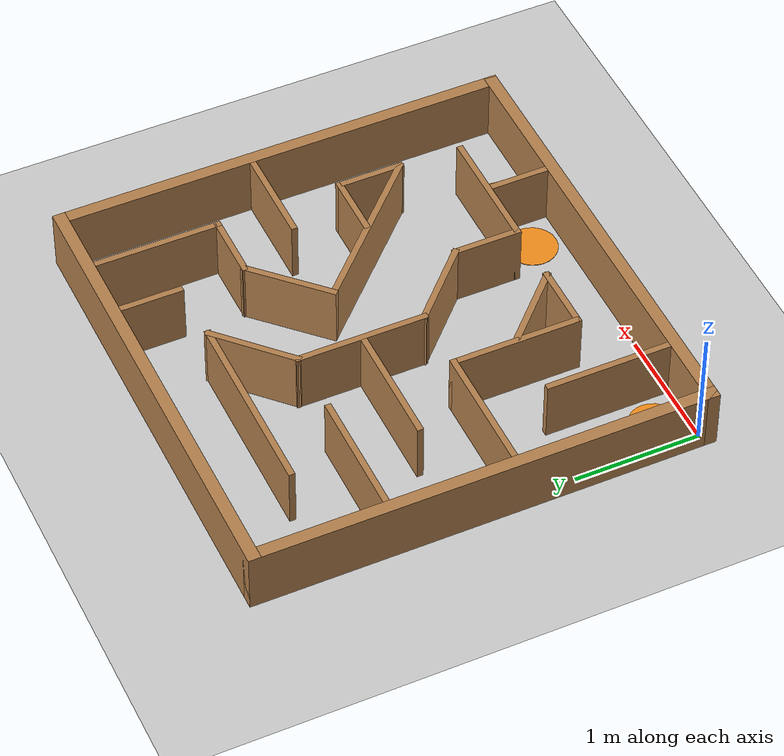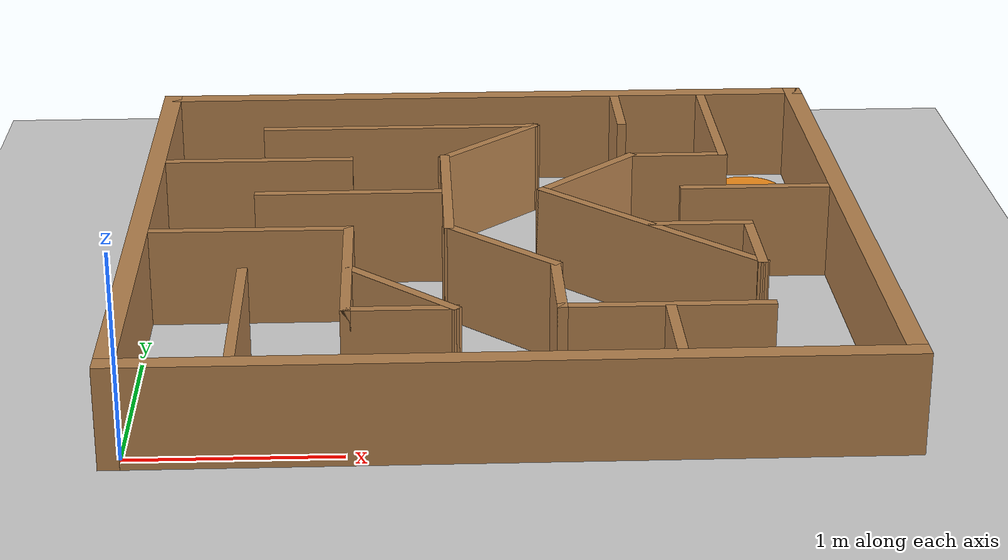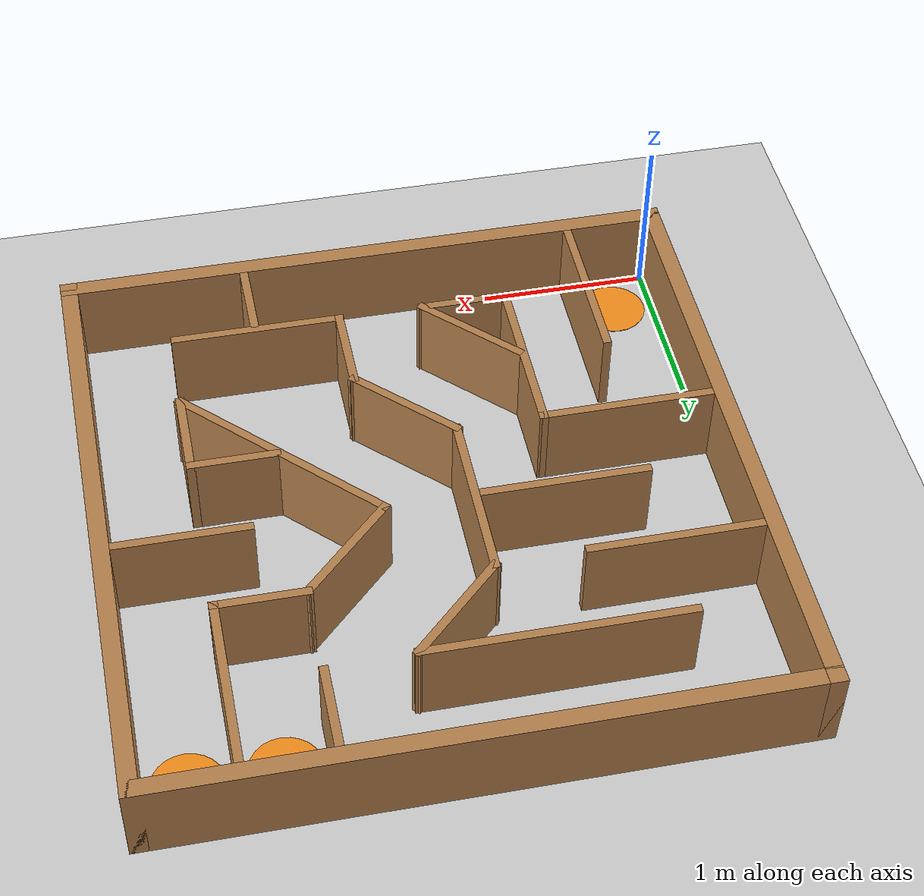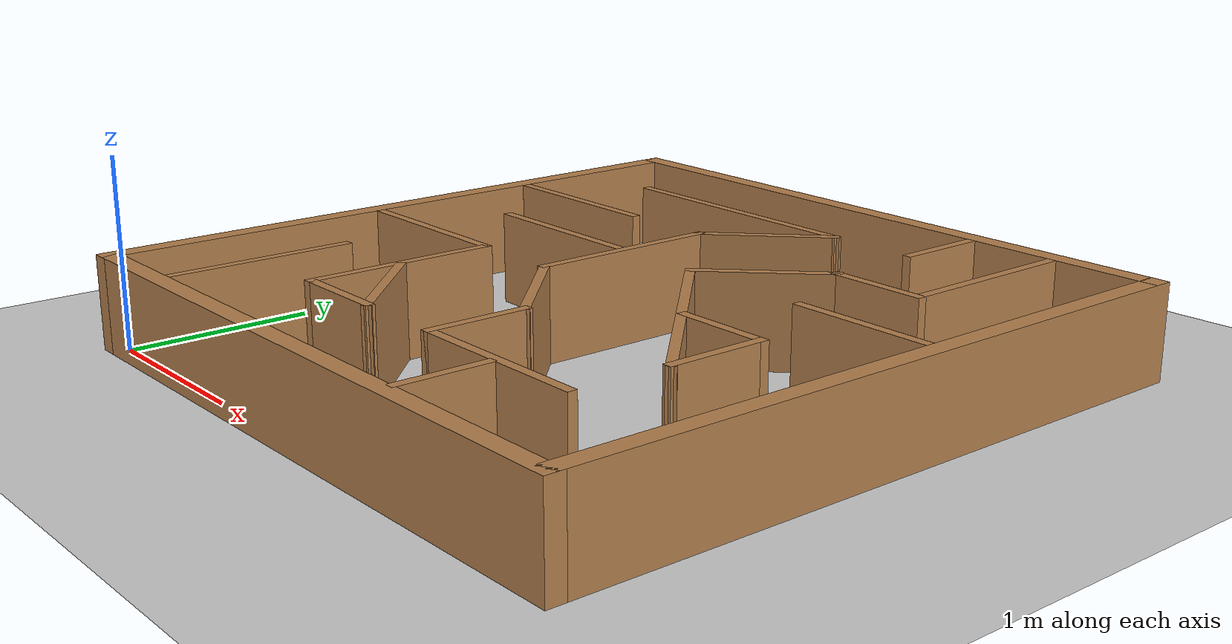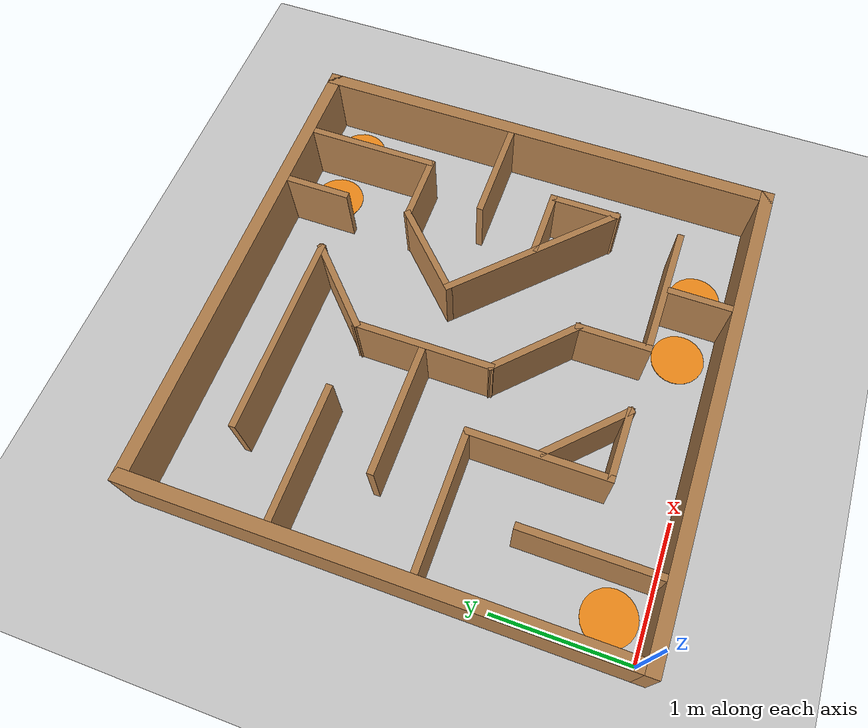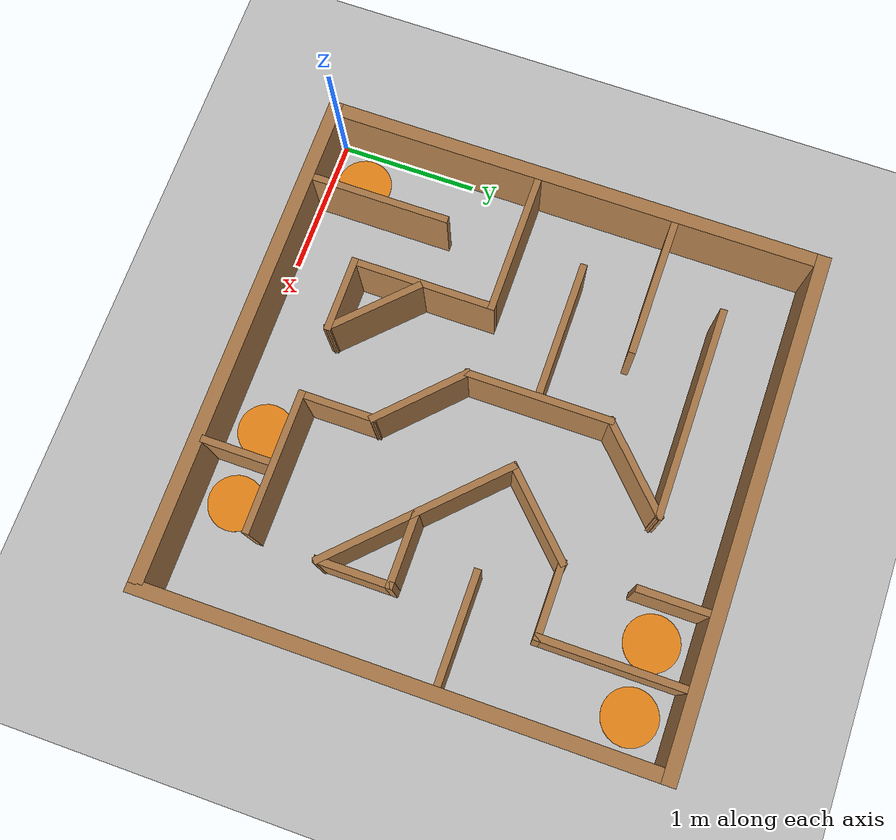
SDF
<sdf version="1.7">
 <world name="default">
  <light name="sun" type="directional">
   <pose>0 0 10 0 -0 0</pose>
   <diffuse>0.8 0.8 0.8 1</diffuse>
   <specular>0.2 0.2 0.2 1</specular>
   <attenuation>
    <range>1000</range>
    <constant>0.9</constant>
    <linear>0.01</linear>
    <quadratic>0.001</quadratic>
   </attenuation>
   <direction>-0.5 0.1 -0.9</direction>
   <spot><inner_angle>0</inner_angle><outer_angle>0</outer_angle><falloff>0</falloff></spot>
  </light>
  <model name="ground_plane">
   <static>1</static>
   <link name="link">
    <collision name="collision">
     <geometry><plane><normal>0 0 1</normal><size>100 100</size></plane></geometry>
     <surface>
      <contact><collide_bitmask>65535</collide_bitmask></contact>
      <friction><ode><mu>100</mu><mu2>50</mu2></ode></friction>
     </surface>
    </collision>
    <visual name="visual">
     <cast_shadows>0</cast_shadows>
     <geometry><plane><normal>0 0 1</normal><size>100 100</size></plane></geometry>
     <material>
      <script><uri>file://media/materials/scripts/gazebo.material</uri><name>Gazebo/Grey</name></script>
     </material>
    </visual>
   </link>
  </model>
  <gravity>0 0 -9.8</gravity>
  <magnetic_field>6e-06 2.3e-05 -4.2e-05</magnetic_field>
  <atmosphere type="adiabatic"/>
  <physics type="ode">
   <max_step_size>0.001</max_step_size>
   <real_time_factor>1</real_time_factor>
   <real_time_update_rate>1000</real_time_update_rate>
  </physics>
  <scene><ambient>0.4 0.4 0.4 1</ambient><background>0.7 0.7 0.7 1</background><shadows>1</shadows></scene>
  <spherical_coordinates>
   <surface_model>EARTH_WGS84</surface_model>
   <latitude_deg>0</latitude_deg>
   <longitude_deg>0</longitude_deg>
   <elevation>0</elevation>
   <heading_deg>0</heading_deg>
  </spherical_coordinates>
  <model name="maze">
   <pose>1.75 1.75 0 0 -0 0</pose>
   <link name="Wall_10">
    <collision name="Wall_10_Collision">
     <geometry><box><size>1.02 0.05 0.5</size></box></geometry>
     <pose>0 0 0.25 0 -0 0</pose>
    </collision>
    <visual name="Wall_10_Visual">
     <pose>0 0 0.25 0 -0 0</pose>
     <geometry><box><size>1.02 0.05 0.5</size></box></geometry>
     <material>
      <script><uri>file://materials/scripts/seamless_wood.material</uri><name>Team08/SeamlessWood</name></script>
      <ambient>1 1 1 1</ambient>
     </material>
     <meta><layer>0</layer></meta>
    </visual>
    <pose>1.25 1.235 0 0 -0 -1.5708</pose>
   </link>
   <link name="Wall_12">
    <collision name="Wall_12_Collision">
     <geometry><box><size>0.5 0.05 0.5</size></box></geometry>
     <pose>0 0 0.25 0 -0 0</pose>
    </collision>
    <visual name="Wall_12_Visual">
     <pose>0 0 0.25 0 -0 0</pose>
     <geometry><box><size>0.5 0.05 0.5</size></box></geometry>
     <material>
      <script><uri>file://materials/scripts/seamless_wood.material</uri><name>Team08/SeamlessWood</name></script>
      <ambient>1 1 1 1</ambient>
     </material>
     <meta><layer>0</layer></meta>
    </visual>
    <pose>0.75 1.495 0 0 -0 -1.5708</pose>
   </link>
   <link name="Wall_16">
    <collision name="Wall_16_Collision">
     <geometry><box><size>0.55 0.05 0.5</size></box></geometry>
     <pose>0 0 0.25 0 -0 0</pose>
    </collision>
    <visual name="Wall_16_Visual">
     <pose>0 0 0.25 0 -0 0</pose>
     <geometry><box><size>0.55 0.05 0.5</size></box></geometry>
     <material>
      <script><uri>file://materials/scripts/seamless_wood.material</uri><name>Team08/SeamlessWood</name></script>
      <ambient>1 1 1 1</ambient>
     </material>
     <meta><layer>0</layer></meta>
    </visual>
    <pose>1 0.75 0 0 -0 3.14159</pose>
   </link>
   <link name="Wall_18">
    <collision name="Wall_18_Collision">
     <geometry><box><size>0.757107 0.05 0.5</size></box></geometry>
     <pose>0 0 0.25 0 -0 0</pose>
    </collision>
    <visual name="Wall_18_Visual">
     <pose>0 0 0.25 0 -0 0</pose>
     <geometry><box><size>0.757107 0.05 0.5</size></box></geometry>
     <material>
      <script><uri>file://materials/scripts/seamless_wood.material</uri><name>Team08/SeamlessWood</name></script>
      <ambient>1 1 1 1</ambient>
     </material>
     <meta><layer>0</layer></meta>
    </visual>
    <pose>0.5 0.5 0 0 -0 -2.35619</pose>
   </link>
   <link name="Wall_2">
    <collision name="Wall_2_Collision">
     <geometry><box><size>3.69 0.1 0.5</size></box></geometry>
     <pose>0 0 0.25 0 -0 0</pose>
    </collision>
    <visual name="Wall_2_Visual">
     <pose>0 0 0.25 0 -0 0</pose>
     <geometry><box><size>3.69 0.1 0.5</size></box></geometry>
     <material>
      <script><uri>file://materials/scripts/seamless_wood.material</uri><name>Team08/SeamlessWood</name></script>
      <ambient>0.509804 0.478431 0.490196 1</ambient>
     </material>
     <meta><layer>0</layer></meta>
    </visual>
    <pose>0 1.795 0 0 -0 0</pose>
   </link>
   <link name="Wall_20">
    <collision name="Wall_20_Collision">
     <geometry><box><size>1.46421 0.05 0.5</size></box></geometry>
     <pose>0 0 0.25 0 -0 0</pose>
    </collision>
    <visual name="Wall_20_Visual">
     <pose>0 0 0.25 0 -0 0</pose>
     <geometry><box><size>1.46421 0.05 0.5</size></box></geometry>
     <material>
      <script><uri>file://materials/scripts/seamless_wood.material</uri><name>Team08/SeamlessWood</name></script>
      <ambient>1 1 1 1</ambient>
     </material>
     <meta><layer>0</layer></meta>
    </visual>
    <pose>0.75 -0.25 0 0 -0 -0.785398</pose>
   </link>
   <link name="Wall_22">
    <collision name="Wall_22_Collision">
     <geometry><box><size>0.55 0.05 0.5</size></box></geometry>
     <pose>0 0 0.25 0 -0 0</pose>
    </collision>
    <visual name="Wall_22_Visual">
     <pose>0 0 0.25 0 -0 0</pose>
     <geometry><box><size>0.55 0.05 0.5</size></box></geometry>
     <material>
      <script><uri>file://materials/scripts/seamless_wood.material</uri><name>Team08/SeamlessWood</name></script>
      <ambient>1 1 1 1</ambient>
     </material>
     <meta><layer>0</layer></meta>
    </visual>
    <pose>1.25 -0.5 0 0 -0 1.5708</pose>
   </link>
   <link name="Wall_24">
    <collision name="Wall_24_Collision">
     <geometry><box><size>0.53 0.05 0.5</size></box></geometry>
     <pose>0 0 0.25 0 -0 0</pose>
    </collision>
    <visual name="Wall_24_Visual">
     <pose>0 0 0.25 0 -0 0</pose>
     <geometry><box><size>0.53 0.05 0.5</size></box></geometry>
     <material>
      <script><uri>file://materials/scripts/seamless_wood.material</uri><name>Team08/SeamlessWood</name></script>
      <ambient>1 1 1 1</ambient>
     </material>
     <meta><layer>0</layer></meta>
    </visual>
    <pose>1.01 -0.25 0 0 -0 3.14159</pose>
   </link>
   <link name="Wall_26">
    <collision name="Wall_26_Collision">
     <geometry><box><size>0.78 0.05 0.5</size></box></geometry>
     <pose>0 0 0.25 0 -0 0</pose>
    </collision>
    <visual name="Wall_26_Visual">
     <pose>0 0 0.25 0 -0 0</pose>
     <geometry><box><size>0.78 0.05 0.5</size></box></geometry>
     <material>
      <script><uri>file://materials/scripts/seamless_wood.material</uri><name>Team08/SeamlessWood</name></script>
      <ambient>1 1 1 1</ambient>
     </material>
     <meta><layer>0</layer></meta>
    </visual>
    <pose>1.355 0.25 0 0 -0 3.14159</pose>
   </link>
   <link name="Wall_28">
    <collision name="Wall_28_Collision">
     <geometry><box><size>0.5 0.05 0.5</size></box></geometry>
     <pose>0 0 0.25 0 -0 0</pose>
    </collision>
    <visual name="Wall_28_Visual">
     <pose>0 0 0.25 0 -0 0</pose>
     <geometry><box><size>0.5 0.05 0.5</size></box></geometry>
     <material>
      <script><uri>file://materials/scripts/seamless_wood.material</uri><name>Team08/SeamlessWood</name></script>
      <ambient>1 1 1 1</ambient>
     </material>
     <meta><layer>0</layer></meta>
    </visual>
    <pose>0.75 -1.515 0 0 -0 1.5708</pose>
   </link>
   <link name="Wall_30">
    <collision name="Wall_30_Collision">
     <geometry><box><size>1 0.05 0.5</size></box></geometry>
     <pose>0 0 0.25 0 -0 0</pose>
    </collision>
    <visual name="Wall_30_Visual">
     <pose>0 0 0.25 0 -0 0</pose>
     <geometry><box><size>1 0.05 0.5</size></box></geometry>
     <material>
      <script><uri>file://materials/scripts/seamless_wood.material</uri><name>Team08/SeamlessWood</name></script>
      <ambient>1 1 1 1</ambient>
     </material>
     <meta><layer>0</layer></meta>
    </visual>
    <pose>-1.25 -1.245 0 0 -0 1.5708</pose>
   </link>
   <link name="Wall_32">
    <collision name="Wall_32_Collision">
     <geometry><box><size>1 0.05 0.5</size></box></geometry>
     <pose>0 0 0.25 0 -0 0</pose>
    </collision>
    <visual name="Wall_32_Visual">
     <pose>0 0 0.25 0 -0 0</pose>
     <geometry><box><size>1 0.05 0.5</size></box></geometry>
     <material>
      <script><uri>file://materials/scripts/seamless_wood.material</uri><name>Team08/SeamlessWood</name></script>
      <ambient>1 1 1 1</ambient>
     </material>
     <meta><layer>0</layer></meta>
    </visual>
    <pose>-1.245 0.75 0 0 -0 0</pose>
   </link>
   <link name="Wall_34">
    <collision name="Wall_34_Collision">
     <geometry><box><size>1.02 0.05 0.5</size></box></geometry>
     <pose>0 0 0.25 0 -0 0</pose>
    </collision>
    <visual name="Wall_34_Visual">
     <pose>0 0 0.25 0 -0 0</pose>
     <geometry><box><size>1.02 0.05 0.5</size></box></geometry>
     <material>
      <script><uri>file://materials/scripts/seamless_wood.material</uri><name>Team08/SeamlessWood</name></script>
      <ambient>1 1 1 1</ambient>
     </material>
     <meta><layer>0</layer></meta>
    </visual>
    <pose>-1.235 -0.25 0 0 -0 0</pose>
   </link>
   <link name="Wall_36">
    <collision name="Wall_36_Collision">
     <geometry><box><size>1.05 0.05 0.5</size></box></geometry>
     <pose>0 0 0.25 0 -0 0</pose>
    </collision>
    <visual name="Wall_36_Visual">
     <pose>0 0 0.25 0 -0 0</pose>
     <geometry><box><size>1.05 0.05 0.5</size></box></geometry>
     <material>
      <script><uri>file://materials/scripts/seamless_wood.material</uri><name>Team08/SeamlessWood</name></script>
      <ambient>1 1 1 1</ambient>
     </material>
     <meta><layer>0</layer></meta>
    </visual>
    <pose>-0.75 -0.75 0 0 -0 -1.5708</pose>
   </link>
   <link name="Wall_38">
    <collision name="Wall_38_Collision">
     <geometry><box><size>0.55 0.05 0.5</size></box></geometry>
     <pose>0 0 0.25 0 -0 0</pose>
    </collision>
    <visual name="Wall_38_Visual">
     <pose>0 0 0.25 0 -0 0</pose>
     <geometry><box><size>0.55 0.05 0.5</size></box></geometry>
     <material>
      <script><uri>file://materials/scripts/seamless_wood.material</uri><name>Team08/SeamlessWood</name></script>
      <ambient>1 1 1 1</ambient>
     </material>
     <meta><layer>0</layer></meta>
    </visual>
    <pose>-0.5 -1.25 0 0 -0 0</pose>
   </link>
   <link name="Wall_4">
    <collision name="Wall_4_Collision">
     <geometry><box><size>3.69 0.1 0.5</size></box></geometry>
     <pose>0 0 0.25 0 -0 0</pose>
    </collision>
    <visual name="Wall_4_Visual">
     <pose>0 0 0.25 0 -0 0</pose>
     <geometry><box><size>3.69 0.1 0.5</size></box></geometry>
     <material>
      <script><uri>file://materials/scripts/seamless_wood.material</uri><name>Team08/SeamlessWood</name></script>
      <ambient>0.509804 0.478431 0.490196 1</ambient>
     </material>
     <meta><layer>0</layer></meta>
    </visual>
    <pose>1.795 0 0 0 -0 -1.5708</pose>
   </link>
   <link name="Wall_40">
    <collision name="Wall_40_Collision">
     <geometry><box><size>0.725 0.05 0.5</size></box></geometry>
     <pose>0 0 0.25 0 -0 0</pose>
    </collision>
    <visual name="Wall_40_Visual">
     <pose>0 0 0.25 0 -0 0</pose>
     <geometry><box><size>0.725 0.05 0.5</size></box></geometry>
     <material>
      <script><uri>file://materials/scripts/seamless_wood.material</uri><name>Team08/SeamlessWood</name></script>
      <ambient>1 1 1 1</ambient>
     </material>
     <meta><layer>0</layer></meta>
    </visual>
    <pose>-0.4885 -1.0115 0 0 -0 2.35619</pose>
   </link>
   <link name="Wall_42">
    <collision name="Wall_42_Collision">
     <geometry><box><size>1.525 0.05 0.5</size></box></geometry>
     <pose>0 0 0.25 0 -0 0</pose>
    </collision>
    <visual name="Wall_42_Visual">
     <pose>0 0 0.25 0 -0 0</pose>
     <geometry><box><size>1.525 0.05 0.5</size></box></geometry>
     <material>
      <script><uri>file://materials/scripts/seamless_wood.material</uri><name>Team08/SeamlessWood</name></script>
      <ambient>1 1 1 1</ambient>
     </material>
     <meta><layer>0</layer></meta>
    </visual>
    <pose>-0.4825 1.25 0 0 -0 0</pose>
   </link>
   <link name="Wall_44">
    <collision name="Wall_44_Collision">
     <geometry><box><size>0.753651 0.05 0.5</size></box></geometry>
     <pose>0 0 0.25 0 -0 0</pose>
    </collision>
    <visual name="Wall_44_Visual">
     <pose>0 0 0.25 0 -0 0</pose>
     <geometry><box><size>0.753651 0.05 0.5</size></box></geometry>
     <material>
      <script><uri>file://materials/scripts/seamless_wood.material</uri><name>Team08/SeamlessWood</name></script>
      <ambient>1 1 1 1</ambient>
     </material>
     <meta><layer>0</layer></meta>
    </visual>
    <pose>0.0025 1.005 0 0 -0 -2.37127</pose>
   </link>
   <link name="Wall_46">
    <collision name="Wall_46_Collision">
     <geometry><box><size>1.06 0.05 0.5</size></box></geometry>
     <pose>0 0 0.25 0 -0 0</pose>
    </collision>
    <visual name="Wall_46_Visual">
     <pose>0 0 0.25 0 -0 0</pose>
     <geometry><box><size>1.06 0.05 0.5</size></box></geometry>
     <material>
      <script><uri>file://materials/scripts/seamless_wood.material</uri><name>Team08/SeamlessWood</name></script>
      <ambient>1 1 1 1</ambient>
     </material>
     <meta><layer>0</layer></meta>
    </visual>
    <pose>-0.25 0.255 0 0 -0 -1.5708</pose>
   </link>
   <link name="Wall_48">
    <collision name="Wall_48_Collision">
     <geometry><box><size>0.970001 0.05 0.5</size></box></geometry>
     <pose>0 0 0.25 0 -0 0</pose>
    </collision>
    <visual name="Wall_48_Visual">
     <pose>0 0 0.25 0 -0 0</pose>
     <geometry><box><size>0.970001 0.05 0.5</size></box></geometry>
     <material>
      <script><uri>file://materials/scripts/seamless_wood.material</uri><name>Team08/SeamlessWood</name></script>
      <ambient>1 1 1 1</ambient>
     </material>
     <meta><layer>0</layer></meta>
    </visual>
    <pose>-0.76 0.249 0 0 -0 3.14159</pose>
   </link>
   <link name="Wall_50">
    <collision name="Wall_50_Collision">
     <geometry><box><size>0.750071 0.05 0.5</size></box></geometry>
     <pose>0 0 0.25 0 -0 0</pose>
    </collision>
    <visual name="Wall_50_Visual">
     <pose>0 0 0.25 0 -0 0</pose>
     <geometry><box><size>0.750071 0.05 0.5</size></box></geometry>
     <material>
      <script><uri>file://materials/scripts/seamless_wood.material</uri><name>Team08/SeamlessWood</name></script>
      <ambient>1 1 1 1</ambient>
     </material>
     <meta><layer>0</layer></meta>
    </visual>
    <pose>0 -0.495 0 0 -0 -0.775298</pose>
   </link>
   <link name="Wall_52">
    <collision name="Wall_52_Collision">
     <geometry><box><size>0.56 0.05 0.5</size></box></geometry>
     <pose>0 0 0.25 0 -0 0</pose>
    </collision>
    <visual name="Wall_52_Visual">
     <pose>0 0 0.25 0 -0 0</pose>
     <geometry><box><size>0.56 0.05 0.5</size></box></geometry>
     <material>
      <script><uri>file://materials/scripts/seamless_wood.material</uri><name>Team08/SeamlessWood</name></script>
      <ambient>1 1 1 1</ambient>
     </material>
     <meta><layer>0</layer></meta>
    </visual>
    <pose>0.25 -0.995 0 0 -0 -1.5708</pose>
   </link>
   <link name="Wall_54">
    <collision name="Wall_54_Collision">
     <geometry><box><size>1.02 0.05 0.5</size></box></geometry>
     <pose>0 0 0.25 0 -0 0</pose>
    </collision>
    <visual name="Wall_54_Visual">
     <pose>0 0 0.25 0 -0 0</pose>
     <geometry><box><size>1.02 0.05 0.5</size></box></geometry>
     <material>
      <script><uri>file://materials/scripts/seamless_wood.material</uri><name>Team08/SeamlessWood</name></script>
      <ambient>1 1 1 1</ambient>
     </material>
     <meta><layer>0</layer></meta>
    </visual>
    <pose>0.735 -1.25 0 0 -0 0</pose>
   </link>
   <link name="Wall_6">
    <collision name="Wall_6_Collision">
     <geometry><box><size>3.69 0.1 0.5</size></box></geometry>
     <pose>0 0 0.25 0 -0 0</pose>
    </collision>
    <visual name="Wall_6_Visual">
     <pose>0 0 0.25 0 -0 0</pose>
     <geometry><box><size>3.69 0.1 0.5</size></box></geometry>
     <material>
      <script><uri>file://materials/scripts/seamless_wood.material</uri><name>Team08/SeamlessWood</name></script>
      <ambient>0.509804 0.478431 0.490196 1</ambient>
     </material>
     <meta><layer>0</layer></meta>
    </visual>
    <pose>0 -1.795 0 0 -0 3.14159</pose>
   </link>
   <link name="Wall_8">
    <collision name="Wall_8_Collision">
     <geometry><box><size>3.69 0.1 0.5</size></box></geometry>
     <pose>0 0 0.25 0 -0 0</pose>
    </collision>
    <visual name="Wall_8_Visual">
     <pose>0 0 0.25 0 -0 0</pose>
     <geometry><box><size>3.69 0.1 0.5</size></box></geometry>
     <material>
      <script><uri>file://materials/scripts/seamless_wood.material</uri><name>Team08/SeamlessWood</name></script>
      <ambient>0.509804 0.478431 0.490196 1</ambient>
     </material>
     <meta><layer>0</layer></meta>
    </visual>
    <pose>-1.795 0 0 0 -0 1.5708</pose>
   </link>
   <static>1</static>
  </model>
  <model name="Zones">
   <link name="link_0">
    <inertial>
     <mass>1</mass>
     <inertia><ixx>0.145833</ixx><ixy>0</ixy><ixz>0</ixz><iyy>0.145833</iyy><iyz>0</iyz><izz>0.125</izz></inertia>
    </inertial>
    <pose>-0.01853 -1.20086 -0 0 -0 0</pose>
    <visual name="visual">
     <geometry><cylinder><radius>0.2</radius><length>0.005</length></cylinder></geometry>
     <material>
      <lighting>1</lighting>
      <script><uri>file://media/materials/scripts/gazebo.material</uri><name>Gazebo/Orange</name></script>
      <shader type="pixel"><normal_map>__default__</normal_map></shader>
      <ambient>0.255 0.14 0 1</ambient>
      <diffuse>0.255 0.14 0 1</diffuse>
      <specular>0.255 0.14 0 1</specular>
      <emissive>0.255 0.14 0 1</emissive>
     </material>
    </visual>
    <collision name="collision">
     <geometry><cylinder><radius>0.2</radius><length>0.005</length></cylinder></geometry>
     <surface>
      <friction>
       <ode><mu>1</mu><mu2>1</mu2><fdir1>0 0 0</fdir1><slip1>0</slip1><slip2>0</slip2></ode>
       <torsional>
        <coefficient>1</coefficient>
        <patch_radius>0</patch_radius>
        <surface_radius>0</surface_radius>
        <use_patch_radius>1</use_patch_radius>
        <ode><slip>0</slip></ode>
       </torsional>
      </friction>
      <bounce><restitution_coefficient>0</restitution_coefficient><threshold>1e+06</threshold></bounce>
      <contact>
       <collide_without_contact>0</collide_without_contact>
       <collide_without_contact_bitmask>1</collide_without_contact_bitmask>
       <collide_bitmask>1</collide_bitmask>
       <ode>
        <soft_cfm>0</soft_cfm>
        <soft_erp>0.2</soft_erp>
        <kp>1e+13</kp>
        <kd>1</kd>
        <max_vel>0.01</max_vel>
        <min_depth>0</min_depth>
       </ode>
       <bullet>
        <split_impulse>1</split_impulse>
        <split_impulse_penetration_threshold>-0.01</split_impulse_penetration_threshold>
        <soft_cfm>0</soft_cfm>
        <soft_erp>0.2</soft_erp>
        <kp>1e+13</kp>
        <kd>1</kd>
       </bullet>
      </contact>
     </surface>
    </collision>
   </link>
   <link name="link_0_clone">
    <inertial>
     <mass>1</mass>
     <inertia><ixx>0.145833</ixx><ixy>0</ixy><ixz>0</ixz><iyy>0.145833</iyy><iyz>0</iyz><izz>0.125</izz></inertia>
    </inertial>
    <pose>0.525973 -1.20497 0 0 -0 0</pose>
    <visual name="visual">
     <geometry><cylinder><radius>0.2</radius><length>0.005</length></cylinder></geometry>
     <material>
      <lighting>1</lighting>
      <script><uri>file://media/materials/scripts/gazebo.material</uri><name>Gazebo/Orange</name></script>
      <shader type="pixel"><normal_map>__default__</normal_map></shader>
      <ambient>0.255 0.14 0 1</ambient>
      <diffuse>0.255 0.14 0 1</diffuse>
      <specular>0.255 0.14 0 1</specular>
      <emissive>0.255 0.14 0 1</emissive>
     </material>
    </visual>
    <collision name="collision">
     <geometry><cylinder><radius>0.2</radius><length>0.005</length></cylinder></geometry>
     <surface>
      <friction>
       <ode><mu>1</mu><mu2>1</mu2><fdir1>0 0 0</fdir1><slip1>0</slip1><slip2>0</slip2></ode>
       <torsional>
        <coefficient>1</coefficient>
        <patch_radius>0</patch_radius>
        <surface_radius>0</surface_radius>
        <use_patch_radius>1</use_patch_radius>
        <ode><slip>0</slip></ode>
       </torsional>
      </friction>
      <bounce><restitution_coefficient>0</restitution_coefficient><threshold>1e+06</threshold></bounce>
      <contact>
       <collide_without_contact>0</collide_without_contact>
       <collide_without_contact_bitmask>1</collide_without_contact_bitmask>
       <collide_bitmask>1</collide_bitmask>
       <ode>
        <soft_cfm>0</soft_cfm>
        <soft_erp>0.2</soft_erp>
        <kp>1e+13</kp>
        <kd>1</kd>
        <max_vel>0.01</max_vel>
        <min_depth>0</min_depth>
       </ode>
       <bullet>
        <split_impulse>1</split_impulse>
        <split_impulse_penetration_threshold>-0.01</split_impulse_penetration_threshold>
        <soft_cfm>0</soft_cfm>
        <soft_erp>0.2</soft_erp>
        <kp>1e+13</kp>
        <kd>1</kd>
       </bullet>
      </contact>
     </surface>
    </collision>
   </link>
   <link name="link_0_clone_0">
    <inertial>
     <mass>1</mass>
     <inertia><ixx>0.145833</ixx><ixy>0</ixy><ixz>0</ixz><iyy>0.145833</iyy><iyz>0</iyz><izz>0.125</izz></inertia>
    </inertial>
    <pose>0.49862 1.80393 0 0 -0 0</pose>
    <visual name="visual">
     <geometry><cylinder><radius>0.2</radius><length>0.005</length></cylinder></geometry>
     <material>
      <lighting>1</lighting>
      <script><uri>file://media/materials/scripts/gazebo.material</uri><name>Gazebo/Orange</name></script>
      <shader type="pixel"><normal_map>__default__</normal_map></shader>
      <ambient>0.255 0.14 0 1</ambient>
      <diffuse>0.255 0.14 0 1</diffuse>
      <specular>0.255 0.14 0 1</specular>
      <emissive>0.255 0.14 0 1</emissive>
     </material>
    </visual>
    <collision name="collision">
     <geometry><cylinder><radius>0.2</radius><length>0.005</length></cylinder></geometry>
     <surface>
      <friction>
       <ode><mu>1</mu><mu2>1</mu2><fdir1>0 0 0</fdir1><slip1>0</slip1><slip2>0</slip2></ode>
       <torsional>
        <coefficient>1</coefficient>
        <patch_radius>0</patch_radius>
        <surface_radius>0</surface_radius>
        <use_patch_radius>1</use_patch_radius>
        <ode><slip>0</slip></ode>
       </torsional>
      </friction>
      <bounce><restitution_coefficient>0</restitution_coefficient><threshold>1e+06</threshold></bounce>
      <contact>
       <collide_without_contact>0</collide_without_contact>
       <collide_without_contact_bitmask>1</collide_without_contact_bitmask>
       <collide_bitmask>1</collide_bitmask>
       <ode>
        <soft_cfm>0</soft_cfm>
        <soft_erp>0.2</soft_erp>
        <kp>1e+13</kp>
        <kd>1</kd>
        <max_vel>0.01</max_vel>
        <min_depth>0</min_depth>
       </ode>
       <bullet>
        <split_impulse>1</split_impulse>
        <split_impulse_penetration_threshold>-0.01</split_impulse_penetration_threshold>
        <soft_cfm>0</soft_cfm>
        <soft_erp>0.2</soft_erp>
        <kp>1e+13</kp>
        <kd>1</kd>
       </bullet>
      </contact>
     </surface>
    </collision>
   </link>
   <link name="link_0_clone_1">
    <inertial>
     <mass>1</mass>
     <inertia><ixx>0.145833</ixx><ixy>0</ixy><ixz>0</ixz><iyy>0.145833</iyy><iyz>0</iyz><izz>0.125</izz></inertia>
    </inertial>
    <pose>1.00732 1.80838 0 0 -0 0</pose>
    <visual name="visual">
     <geometry><cylinder><radius>0.2</radius><length>0.005</length></cylinder></geometry>
     <material>
      <lighting>1</lighting>
      <script><uri>file://media/materials/scripts/gazebo.material</uri><name>Gazebo/Orange</name></script>
      <shader type="pixel"><normal_map>__default__</normal_map></shader>
      <ambient>0.1 0.149 0.237 1</ambient>
      <diffuse>0.1 0.149 0.237 1</diffuse>
      <specular>0.1 0.149 0.237 1</specular>
      <emissive>0.1 0.149 0.237 1</emissive>
     </material>
    </visual>
    <collision name="collision">
     <geometry><cylinder><radius>0.2</radius><length>0.005</length></cylinder></geometry>
     <surface>
      <friction>
       <ode><mu>1</mu><mu2>1</mu2><fdir1>0 0 0</fdir1><slip1>0</slip1><slip2>0</slip2></ode>
       <torsional>
        <coefficient>1</coefficient>
        <patch_radius>0</patch_radius>
        <surface_radius>0</surface_radius>
        <use_patch_radius>1</use_patch_radius>
        <ode><slip>0</slip></ode>
       </torsional>
      </friction>
      <bounce><restitution_coefficient>0</restitution_coefficient><threshold>1e+06</threshold></bounce>
      <contact>
       <collide_without_contact>0</collide_without_contact>
       <collide_without_contact_bitmask>1</collide_without_contact_bitmask>
       <collide_bitmask>1</collide_bitmask>
       <ode>
        <soft_cfm>0</soft_cfm>
        <soft_erp>0.2</soft_erp>
        <kp>1e+13</kp>
        <kd>1</kd>
        <max_vel>0.01</max_vel>
        <min_depth>0</min_depth>
       </ode>
       <bullet>
        <split_impulse>1</split_impulse>
        <split_impulse_penetration_threshold>-0.01</split_impulse_penetration_threshold>
        <soft_cfm>0</soft_cfm>
        <soft_erp>0.2</soft_erp>
        <kp>1e+13</kp>
        <kd>1</kd>
       </bullet>
      </contact>
     </surface>
    </collision>
   </link>
   <link name="link_0_clone_2">
    <inertial>
     <mass>1</mass>
     <inertia><ixx>0.145833</ixx><ixy>0</ixy><ixz>0</ixz><iyy>0.145833</iyy><iyz>0</iyz><izz>0.125</izz></inertia>
    </inertial>
    <pose>-2.01339 -1.20646 0 0 -0 0</pose>
    <visual name="visual">
     <geometry><cylinder><radius>0.2</radius><length>0.005</length></cylinder></geometry>
     <material>
      <lighting>1</lighting>
      <script><uri>file://media/materials/scripts/gazebo.material</uri><name>Gazebo/Orange</name></script>
      <shader type="pixel"><normal_map>__default__</normal_map></shader>
      <ambient>0.06 0.179 0.113 1</ambient>
      <diffuse>0.06 0.179 0.113 1</diffuse>
      <specular>0.06 0.179 0.113 1</specular>
      <emissive>0.06 0.179 0.113 1</emissive>
     </material>
    </visual>
    <collision name="collision">
     <geometry><cylinder><radius>0.2</radius><length>0.005</length></cylinder></geometry>
     <surface>
      <friction>
       <ode><mu>1</mu><mu2>1</mu2><fdir1>0 0 0</fdir1><slip1>0</slip1><slip2>0</slip2></ode>
       <torsional>
        <coefficient>1</coefficient>
        <patch_radius>0</patch_radius>
        <surface_radius>0</surface_radius>
        <use_patch_radius>1</use_patch_radius>
        <ode><slip>0</slip></ode>
       </torsional>
      </friction>
      <bounce><restitution_coefficient>0</restitution_coefficient><threshold>1e+06</threshold></bounce>
      <contact>
       <collide_without_contact>0</collide_without_contact>
       <collide_without_contact_bitmask>1</collide_without_contact_bitmask>
       <collide_bitmask>1</collide_bitmask>
       <ode>
        <soft_cfm>0</soft_cfm>
        <soft_erp>0.2</soft_erp>
        <kp>1e+13</kp>
        <kd>1</kd>
        <max_vel>0.01</max_vel>
        <min_depth>0</min_depth>
       </ode>
       <bullet>
        <split_impulse>1</split_impulse>
        <split_impulse_penetration_threshold>-0.01</split_impulse_penetration_threshold>
        <soft_cfm>0</soft_cfm>
        <soft_erp>0.2</soft_erp>
        <kp>1e+13</kp>
        <kd>1</kd>
       </bullet>
      </contact>
     </surface>
    </collision>
   </link>
   <static>0</static>
   <pose>2.25279 1.44262 0.002491 0 -0 0</pose>
  </model>
 </world>
</sdf>
